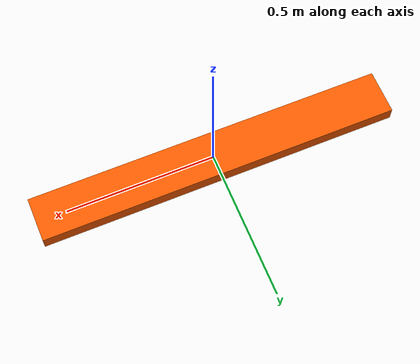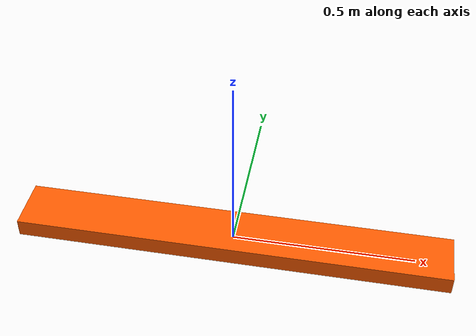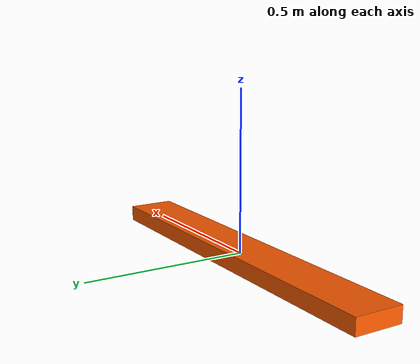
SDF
<?xml version="1.0"?>
<sdf version="1.5">
  <model name="channel_marker">
    <static>false</static>

    <link name="shape">
      <inertial>
        <!-- Obscenely heavy -->
        <mass>200</mass>
      </inertial>

      <collision name="box_collision">
        <geometry>
          <box><size>1.2 .15 .05</size></box>
        </geometry>
      </collision>

      <visual name="visual">
        <geometry>
          <box><size>1.2 .15 .05</size></box>
        </geometry>
        <material>
          <ambient>1.0  0.36078  0.0 1</ambient>
          <diffuse>1.0  0.36078  0.0 1</diffuse>
          <specular>0.1 0.1 0.1 1</specular>
          <emissive>0 0 0 0</emissive>
        </material>
      </visual>
   </link>
 </model>
</sdf>
